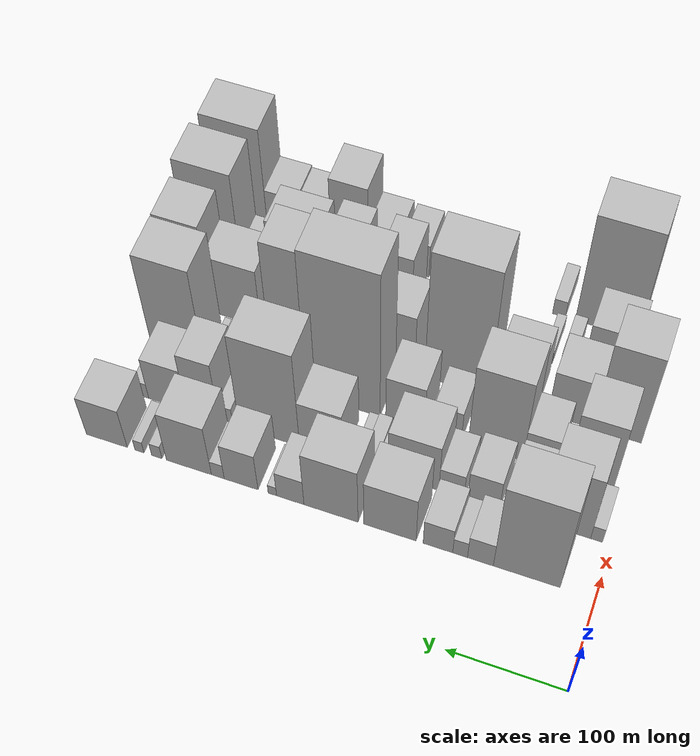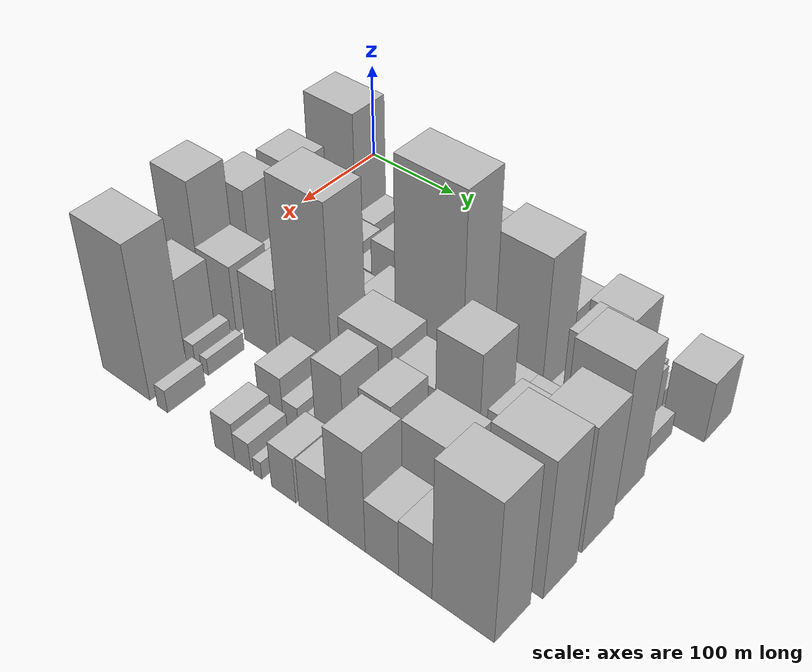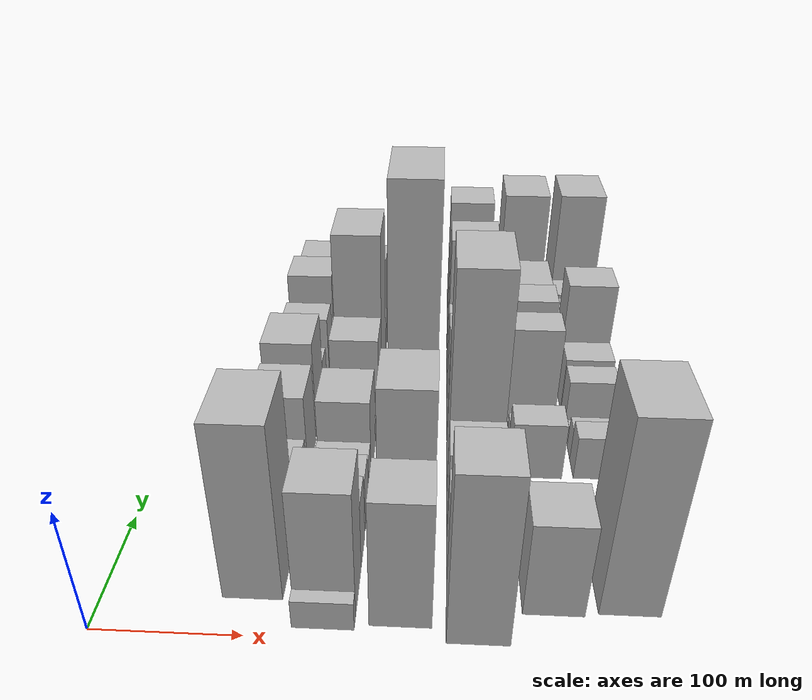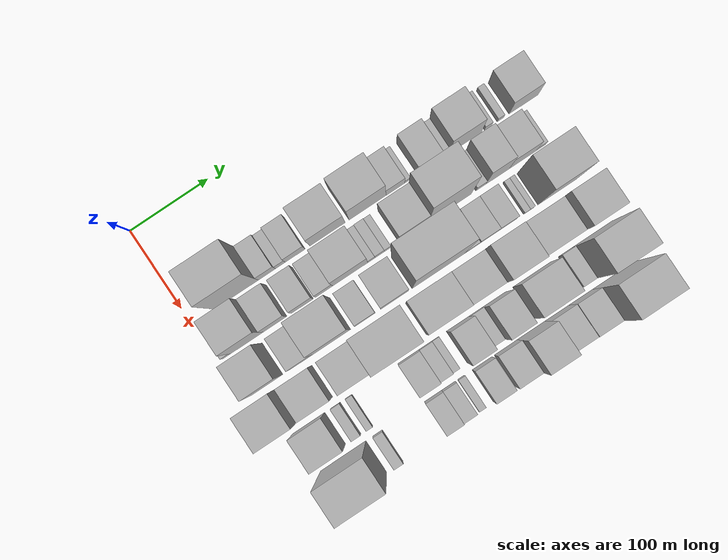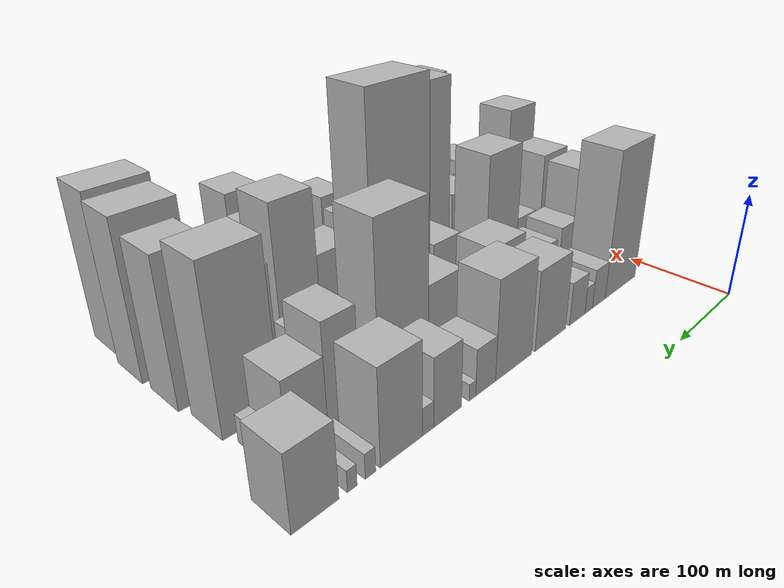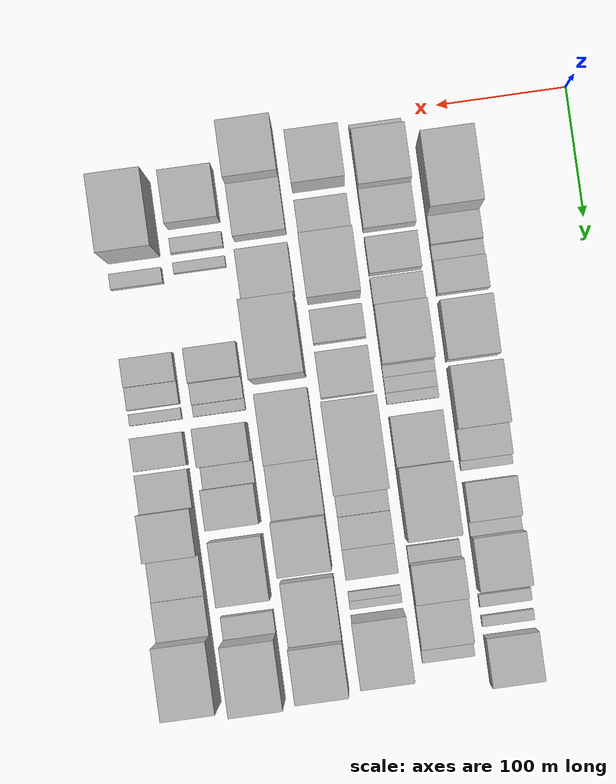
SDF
<sdf version="1.6">
 <world name="default">
  <model name="building_25">
   <static>1</static>
   <pose>100.0000 57.4775 0 0.000000 0.000000 0.000000</pose>
   <link name="link">
    <pose>0 0 72.00 0 0 0</pose>
    <collision name="collision"><geometry><box><size>40.0000 55.8075 144.0000</size></box></geometry></collision>
    <visual name="visual">
     <cast_shadows>0</cast_shadows>
     <geometry><box><size>40.0000 55.8075 144.0000</size></box></geometry>
     <material>
      <script>
       <uri>model://HANNAS_wall/materials/scripts</uri>
       <uri>model://HANNAS_wall/materials/textures</uri>
       <name>vrc/HANNAS_wall</name>
      </script>
     </material>
    </visual>
   </link>
  </model>
  <model name="building_26">
   <static>1</static>
   <pose>100.0000 96.2898 0 0.000000 0.000000 0.000000</pose>
   <link name="link">
    <pose>0 0 19.50 0 0 0</pose>
    <collision name="collision"><geometry><box><size>40.0000 21.8170 39.0000</size></box></geometry></collision>
    <visual name="visual">
     <cast_shadows>0</cast_shadows>
     <geometry><box><size>40.0000 21.8170 39.0000</size></box></geometry>
     <material>
      <script>
       <uri>model://HANNAS_wall/materials/scripts</uri>
       <uri>model://HANNAS_wall/materials/textures</uri>
       <name>vrc/HANNAS_wall</name>
      </script>
     </material>
    </visual>
   </link>
  </model>
  <model name="building_27">
   <static>1</static>
   <pose>100.0000 113.4390 0 0.000000 0.000000 0.000000</pose>
   <link name="link">
    <pose>0 0 13.50 0 0 0</pose>
    <collision name="collision"><geometry><box><size>40.0000 12.4813 27.0000</size></box></geometry></collision>
    <visual name="visual">
     <cast_shadows>0</cast_shadows>
     <geometry><box><size>40.0000 12.4813 27.0000</size></box></geometry>
     <material>
      <script>
       <uri>model://HANNAS_wall/materials/scripts</uri>
       <uri>model://HANNAS_wall/materials/textures</uri>
       <name>vrc/HANNAS_wall</name>
      </script>
     </material>
    </visual>
   </link>
  </model>
  <model name="building_28">
   <static>1</static>
   <pose>100.0000 132.2733 0 0.000000 0.000000 0.000000</pose>
   <link name="link">
    <pose>0 0 21.00 0 0 0</pose>
    <collision name="collision"><geometry><box><size>40.0000 25.1873 42.0000</size></box></geometry></collision>
    <visual name="visual">
     <cast_shadows>0</cast_shadows>
     <geometry><box><size>40.0000 25.1873 42.0000</size></box></geometry>
     <material>
      <script>
       <uri>model://HANNAS_wall/materials/scripts</uri>
       <uri>model://HANNAS_wall/materials/textures</uri>
       <name>vrc/HANNAS_wall</name>
      </script>
     </material>
    </visual>
   </link>
  </model>
  <model name="building_29">
   <static>1</static>
   <pose>100.0000 173.3552 0 0.000000 0.000000 0.000000</pose>
   <link name="link">
    <pose>0 0 37.50 0 0 0</pose>
    <collision name="collision"><geometry><box><size>40.0000 44.9764 75.0000</size></box></geometry></collision>
    <visual name="visual">
     <cast_shadows>0</cast_shadows>
     <geometry><box><size>40.0000 44.9764 75.0000</size></box></geometry>
     <material>
      <script>
       <uri>model://HANNAS_wall/materials/scripts</uri>
       <uri>model://HANNAS_wall/materials/textures</uri>
       <name>vrc/HANNAS_wall</name>
      </script>
     </material>
    </visual>
   </link>
  </model>
  <model name="building_30">
   <static>1</static>
   <pose>100.0000 224.4395 0 0.000000 0.000000 0.000000</pose>
   <link name="link">
    <pose>0 0 45.00 0 0 0</pose>
    <collision name="collision"><geometry><box><size>40.0000 47.1923 90.0000</size></box></geometry></collision>
    <visual name="visual">
     <cast_shadows>0</cast_shadows>
     <geometry><box><size>40.0000 47.1923 90.0000</size></box></geometry>
     <material>
      <script>
       <uri>model://HANNAS_wall/materials/scripts</uri>
       <uri>model://HANNAS_wall/materials/textures</uri>
       <name>vrc/HANNAS_wall</name>
      </script>
     </material>
    </visual>
   </link>
  </model>
  <model name="building_31">
   <static>1</static>
   <pose>100.0000 260.0654 0 0.000000 0.000000 0.000000</pose>
   <link name="link">
    <pose>0 0 21.00 0 0 0</pose>
    <collision name="collision"><geometry><box><size>40.0000 24.0594 42.0000</size></box></geometry></collision>
    <visual name="visual">
     <cast_shadows>0</cast_shadows>
     <geometry><box><size>40.0000 24.0594 42.0000</size></box></geometry>
     <material>
      <script>
       <uri>model://HANNAS_wall/materials/scripts</uri>
       <uri>model://HANNAS_wall/materials/textures</uri>
       <name>vrc/HANNAS_wall</name>
      </script>
     </material>
    </visual>
   </link>
  </model>
  <model name="building_32">
   <static>1</static>
   <pose>100.0000 275.8018 0 0.000000 0.000000 0.000000</pose>
   <link name="link">
    <pose>0 0 7.50 0 0 0</pose>
    <collision name="collision"><geometry><box><size>40.0000 7.4135 15.0000</size></box></geometry></collision>
    <visual name="visual">
     <cast_shadows>0</cast_shadows>
     <geometry><box><size>40.0000 7.4135 15.0000</size></box></geometry>
     <material>
      <script>
       <uri>model://HANNAS_wall/materials/scripts</uri>
       <uri>model://HANNAS_wall/materials/textures</uri>
       <name>vrc/HANNAS_wall</name>
      </script>
     </material>
    </visual>
   </link>
  </model>
  <model name="building_33">
   <static>1</static>
   <pose>100.0000 303.5232 0 0.000000 0.000000 0.000000</pose>
   <link name="link">
    <pose>0 0 30.00 0 0 0</pose>
    <collision name="collision"><geometry><box><size>40.0000 30.0294 60.0000</size></box></geometry></collision>
    <visual name="visual">
     <cast_shadows>0</cast_shadows>
     <geometry><box><size>40.0000 30.0294 60.0000</size></box></geometry>
     <material>
      <script>
       <uri>model://HANNAS_wall/materials/scripts</uri>
       <uri>model://HANNAS_wall/materials/textures</uri>
       <name>vrc/HANNAS_wall</name>
      </script>
     </material>
    </visual>
   </link>
  </model>
  <model name="building_34">
   <static>1</static>
   <pose>100.0000 324.2681 0 0.000000 0.000000 0.000000</pose>
   <link name="link">
    <pose>0 0 12.00 0 0 0</pose>
    <collision name="collision"><geometry><box><size>40.0000 11.4604 24.0000</size></box></geometry></collision>
    <visual name="visual">
     <cast_shadows>0</cast_shadows>
     <geometry><box><size>40.0000 11.4604 24.0000</size></box></geometry>
     <material>
      <script>
       <uri>model://HANNAS_wall/materials/scripts</uri>
       <uri>model://HANNAS_wall/materials/textures</uri>
       <name>vrc/HANNAS_wall</name>
      </script>
     </material>
    </visual>
   </link>
  </model>
  <model name="building_35">
   <static>1</static>
   <pose>100.0000 350.2598 0 0.000000 0.000000 0.000000</pose>
   <link name="link">
    <pose>0 0 40.50 0 0 0</pose>
    <collision name="collision"><geometry><box><size>40.0000 40.5229 81.0000</size></box></geometry></collision>
    <visual name="visual">
     <cast_shadows>0</cast_shadows>
     <geometry><box><size>40.0000 40.5229 81.0000</size></box></geometry>
     <material>
      <script>
       <uri>model://HANNAS_wall/materials/scripts</uri>
       <uri>model://HANNAS_wall/materials/textures</uri>
       <name>vrc/HANNAS_wall</name>
      </script>
     </material>
    </visual>
   </link>
  </model>
  <model name="building_36">
   <static>1</static>
   <pose>100.0000 379.2140 0 0.000000 0.000000 0.000000</pose>
   <link name="link">
    <pose>0 0 10.50 0 0 0</pose>
    <collision name="collision"><geometry><box><size>40.0000 9.3856 21.0000</size></box></geometry></collision>
    <visual name="visual">
     <cast_shadows>0</cast_shadows>
     <geometry><box><size>40.0000 9.3856 21.0000</size></box></geometry>
     <material>
      <script>
       <uri>model://HANNAS_wall/materials/scripts</uri>
       <uri>model://HANNAS_wall/materials/textures</uri>
       <name>vrc/HANNAS_wall</name>
      </script>
     </material>
    </visual>
   </link>
  </model>
  <model name="building_37">
   <static>1</static>
   <pose>100.0000 395.0045 0 0.000000 0.000000 0.000000</pose>
   <link name="link">
    <pose>0 0 9.00 0 0 0</pose>
    <collision name="collision"><geometry><box><size>40.0000 8.1955 18.0000</size></box></geometry></collision>
    <visual name="visual">
     <cast_shadows>0</cast_shadows>
     <geometry><box><size>40.0000 8.1955 18.0000</size></box></geometry>
     <material>
      <script>
       <uri>model://HANNAS_wall/materials/scripts</uri>
       <uri>model://HANNAS_wall/materials/textures</uri>
       <name>vrc/HANNAS_wall</name>
      </script>
     </material>
    </visual>
   </link>
  </model>
  <model name="building_38">
   <static>1</static>
   <pose>100.0000 424.7897 0 0.000000 0.000000 0.000000</pose>
   <link name="link">
    <pose>0 0 31.50 0 0 0</pose>
    <collision name="collision"><geometry><box><size>40.0000 37.3748 63.0000</size></box></geometry></collision>
    <visual name="visual">
     <cast_shadows>0</cast_shadows>
     <geometry><box><size>40.0000 37.3748 63.0000</size></box></geometry>
     <material>
      <script>
       <uri>model://HANNAS_wall/materials/scripts</uri>
       <uri>model://HANNAS_wall/materials/textures</uri>
       <name>vrc/HANNAS_wall</name>
      </script>
     </material>
    </visual>
   </link>
  </model>
  <model name="building_74">
   <static>1</static>
   <pose>149.0000 12.9924 0 0.000000 0.000000 0.000000</pose>
   <link name="link">
    <pose>0 0 12.00 0 0 0</pose>
    <collision name="collision"><geometry><box><size>40.0000 10.0763 24.0000</size></box></geometry></collision>
    <visual name="visual">
     <cast_shadows>0</cast_shadows>
     <geometry><box><size>40.0000 10.0763 24.0000</size></box></geometry>
     <material>
      <script>
       <uri>model://HANNAS_wall/materials/scripts</uri>
       <uri>model://HANNAS_wall/materials/textures</uri>
       <name>vrc/HANNAS_wall</name>
      </script>
     </material>
    </visual>
   </link>
  </model>
  <model name="building_75">
   <static>1</static>
   <pose>149.0000 38.6967 0 0.000000 0.000000 0.000000</pose>
   <link name="link">
    <pose>0 0 52.50 0 0 0</pose>
    <collision name="collision"><geometry><box><size>40.0000 41.3322 105.0000</size></box></geometry></collision>
    <visual name="visual">
     <cast_shadows>0</cast_shadows>
     <geometry><box><size>40.0000 41.3322 105.0000</size></box></geometry>
     <material>
      <script>
       <uri>model://HANNAS_wall/materials/scripts</uri>
       <uri>model://HANNAS_wall/materials/textures</uri>
       <name>vrc/HANNAS_wall</name>
      </script>
     </material>
    </visual>
   </link>
  </model>
  <model name="building_76">
   <static>1</static>
   <pose>149.0000 74.3088 0 0.000000 0.000000 0.000000</pose>
   <link name="link">
    <pose>0 0 28.50 0 0 0</pose>
    <collision name="collision"><geometry><box><size>40.0000 29.8921 57.0000</size></box></geometry></collision>
    <visual name="visual">
     <cast_shadows>0</cast_shadows>
     <geometry><box><size>40.0000 29.8921 57.0000</size></box></geometry>
     <material>
      <script>
       <uri>model://HANNAS_wall/materials/scripts</uri>
       <uri>model://HANNAS_wall/materials/textures</uri>
       <name>vrc/HANNAS_wall</name>
      </script>
     </material>
    </visual>
   </link>
  </model>
  <model name="building_77">
   <static>1</static>
   <pose>149.0000 109.0621 0 0.000000 0.000000 0.000000</pose>
   <link name="link">
    <pose>0 0 24.00 0 0 0</pose>
    <collision name="collision"><geometry><box><size>40.0000 27.6144 48.0000</size></box></geometry></collision>
    <visual name="visual">
     <cast_shadows>0</cast_shadows>
     <geometry><box><size>40.0000 27.6144 48.0000</size></box></geometry>
     <material>
      <script>
       <uri>model://HANNAS_wall/materials/scripts</uri>
       <uri>model://HANNAS_wall/materials/textures</uri>
       <name>vrc/HANNAS_wall</name>
      </script>
     </material>
    </visual>
   </link>
  </model>
  <model name="building_78">
   <static>1</static>
   <pose>149.0000 136.7613 0 0.000000 0.000000 0.000000</pose>
   <link name="link">
    <pose>0 0 19.50 0 0 0</pose>
    <collision name="collision"><geometry><box><size>40.0000 21.7840 39.0000</size></box></geometry></collision>
    <visual name="visual">
     <cast_shadows>0</cast_shadows>
     <geometry><box><size>40.0000 21.7840 39.0000</size></box></geometry>
     <material>
      <script>
       <uri>model://HANNAS_wall/materials/scripts</uri>
       <uri>model://HANNAS_wall/materials/textures</uri>
       <name>vrc/HANNAS_wall</name>
      </script>
     </material>
    </visual>
   </link>
  </model>
  <model name="building_79">
   <static>1</static>
   <pose>149.0000 169.9749 0 0.000000 0.000000 0.000000</pose>
   <link name="link">
    <pose>0 0 37.50 0 0 0</pose>
    <collision name="collision"><geometry><box><size>40.0000 44.6433 75.0000</size></box></geometry></collision>
    <visual name="visual">
     <cast_shadows>0</cast_shadows>
     <geometry><box><size>40.0000 44.6433 75.0000</size></box></geometry>
     <material>
      <script>
       <uri>model://HANNAS_wall/materials/scripts</uri>
       <uri>model://HANNAS_wall/materials/textures</uri>
       <name>vrc/HANNAS_wall</name>
      </script>
     </material>
    </visual>
   </link>
  </model>
  <model name="building_80">
   <static>1</static>
   <pose>149.0000 196.8601 0 0.000000 0.000000 0.000000</pose>
   <link name="link">
    <pose>0 0 10.50 0 0 0</pose>
    <collision name="collision"><geometry><box><size>40.0000 9.1271 21.0000</size></box></geometry></collision>
    <visual name="visual">
     <cast_shadows>0</cast_shadows>
     <geometry><box><size>40.0000 9.1271 21.0000</size></box></geometry>
     <material>
      <script>
       <uri>model://HANNAS_wall/materials/scripts</uri>
       <uri>model://HANNAS_wall/materials/textures</uri>
       <name>vrc/HANNAS_wall</name>
      </script>
     </material>
    </visual>
   </link>
  </model>
  <model name="building_81">
   <static>1</static>
   <pose>149.0000 207.4153 0 0.000000 0.000000 0.000000</pose>
   <link name="link">
    <pose>0 0 12.00 0 0 0</pose>
    <collision name="collision"><geometry><box><size>40.0000 11.9832 24.0000</size></box></geometry></collision>
    <visual name="visual">
     <cast_shadows>0</cast_shadows>
     <geometry><box><size>40.0000 11.9832 24.0000</size></box></geometry>
     <material>
      <script>
       <uri>model://HANNAS_wall/materials/scripts</uri>
       <uri>model://HANNAS_wall/materials/textures</uri>
       <name>vrc/HANNAS_wall</name>
      </script>
     </material>
    </visual>
   </link>
  </model>
  <model name="building_82">
   <static>1</static>
   <pose>149.0000 217.6417 0 0.000000 0.000000 0.000000</pose>
   <link name="link">
    <pose>0 0 10.50 0 0 0</pose>
    <collision name="collision"><geometry><box><size>40.0000 8.4696 21.0000</size></box></geometry></collision>
    <visual name="visual">
     <cast_shadows>0</cast_shadows>
     <geometry><box><size>40.0000 8.4696 21.0000</size></box></geometry>
     <material>
      <script>
       <uri>model://HANNAS_wall/materials/scripts</uri>
       <uri>model://HANNAS_wall/materials/textures</uri>
       <name>vrc/HANNAS_wall</name>
      </script>
     </material>
    </visual>
   </link>
  </model>
  <model name="building_83">
   <static>1</static>
   <pose>149.0000 251.1488 0 0.000000 0.000000 0.000000</pose>
   <link name="link">
    <pose>0 0 37.50 0 0 0</pose>
    <collision name="collision"><geometry><box><size>40.0000 38.5445 75.0000</size></box></geometry></collision>
    <visual name="visual">
     <cast_shadows>0</cast_shadows>
     <geometry><box><size>40.0000 38.5445 75.0000</size></box></geometry>
     <material>
      <script>
       <uri>model://HANNAS_wall/materials/scripts</uri>
       <uri>model://HANNAS_wall/materials/textures</uri>
       <name>vrc/HANNAS_wall</name>
      </script>
     </material>
    </visual>
   </link>
  </model>
  <model name="building_84">
   <static>1</static>
   <pose>149.0000 297.4996 0 0.000000 0.000000 0.000000</pose>
   <link name="link">
    <pose>0 0 75.00 0 0 0</pose>
    <collision name="collision"><geometry><box><size>40.0000 54.1572 150.0000</size></box></geometry></collision>
    <visual name="visual">
     <cast_shadows>0</cast_shadows>
     <geometry><box><size>40.0000 54.1572 150.0000</size></box></geometry>
     <material>
      <script>
       <uri>model://HANNAS_wall/materials/scripts</uri>
       <uri>model://HANNAS_wall/materials/textures</uri>
       <name>vrc/HANNAS_wall</name>
      </script>
     </material>
    </visual>
   </link>
  </model>
  <model name="building_85">
   <static>1</static>
   <pose>149.0000 336.9447 0 0.000000 0.000000 0.000000</pose>
   <link name="link">
    <pose>0 0 13.50 0 0 0</pose>
    <collision name="collision"><geometry><box><size>40.0000 12.7330 27.0000</size></box></geometry></collision>
    <visual name="visual">
     <cast_shadows>0</cast_shadows>
     <geometry><box><size>40.0000 12.7330 27.0000</size></box></geometry>
     <material>
      <script>
       <uri>model://HANNAS_wall/materials/scripts</uri>
       <uri>model://HANNAS_wall/materials/textures</uri>
       <name>vrc/HANNAS_wall</name>
      </script>
     </material>
    </visual>
   </link>
  </model>
  <model name="building_86">
   <static>1</static>
   <pose>149.0000 358.2089 0 0.000000 0.000000 0.000000</pose>
   <link name="link">
    <pose>0 0 46.50 0 0 0</pose>
    <collision name="collision"><geometry><box><size>40.0000 29.7954 93.0000</size></box></geometry></collision>
    <visual name="visual">
     <cast_shadows>0</cast_shadows>
     <geometry><box><size>40.0000 29.7954 93.0000</size></box></geometry>
     <material>
      <script>
       <uri>model://HANNAS_wall/materials/scripts</uri>
       <uri>model://HANNAS_wall/materials/textures</uri>
       <name>vrc/HANNAS_wall</name>
      </script>
     </material>
    </visual>
   </link>
  </model>
  <model name="building_87">
   <static>1</static>
   <pose>149.0000 390.4967 0 0.000000 0.000000 0.000000</pose>
   <link name="link">
    <pose>0 0 33.00 0 0 0</pose>
    <collision name="collision"><geometry><box><size>40.0000 34.7802 66.0000</size></box></geometry></collision>
    <visual name="visual">
     <cast_shadows>0</cast_shadows>
     <geometry><box><size>40.0000 34.7802 66.0000</size></box></geometry>
     <material>
      <script>
       <uri>model://HANNAS_wall/materials/scripts</uri>
       <uri>model://HANNAS_wall/materials/textures</uri>
       <name>vrc/HANNAS_wall</name>
      </script>
     </material>
    </visual>
   </link>
  </model>
  <model name="building_88">
   <static>1</static>
   <pose>149.0000 413.8597 0 0.000000 0.000000 0.000000</pose>
   <link name="link">
    <pose>0 0 12.00 0 0 0</pose>
    <collision name="collision"><geometry><box><size>40.0000 11.9458 24.0000</size></box></geometry></collision>
    <visual name="visual">
     <cast_shadows>0</cast_shadows>
     <geometry><box><size>40.0000 11.9458 24.0000</size></box></geometry>
     <material>
      <script>
       <uri>model://HANNAS_wall/materials/scripts</uri>
       <uri>model://HANNAS_wall/materials/textures</uri>
       <name>vrc/HANNAS_wall</name>
      </script>
     </material>
    </visual>
   </link>
  </model>
  <model name="building_127">
   <static>1</static>
   <pose>198.0000 31.8800 0 0.000000 0.000000 0.000000</pose>
   <link name="link">
    <pose>0 0 52.50 0 0 0</pose>
    <collision name="collision"><geometry><box><size>40.0000 39.5716 105.0000</size></box></geometry></collision>
    <visual name="visual">
     <cast_shadows>0</cast_shadows>
     <geometry><box><size>40.0000 39.5716 105.0000</size></box></geometry>
     <material>
      <script>
       <uri>model://HANNAS_wall/materials/scripts</uri>
       <uri>model://HANNAS_wall/materials/textures</uri>
       <name>vrc/HANNAS_wall</name>
      </script>
     </material>
    </visual>
   </link>
  </model>
  <model name="building_128">
   <static>1</static>
   <pose>198.0000 75.3920 0 0.000000 0.000000 0.000000</pose>
   <link name="link">
    <pose>0 0 25.50 0 0 0</pose>
    <collision name="collision"><geometry><box><size>40.0000 29.4524 51.0000</size></box></geometry></collision>
    <visual name="visual">
     <cast_shadows>0</cast_shadows>
     <geometry><box><size>40.0000 29.4524 51.0000</size></box></geometry>
     <material>
      <script>
       <uri>model://HANNAS_wall/materials/scripts</uri>
       <uri>model://HANNAS_wall/materials/textures</uri>
       <name>vrc/HANNAS_wall</name>
      </script>
     </material>
    </visual>
   </link>
  </model>
  <model name="building_129">
   <static>1</static>
   <pose>198.0000 114.0649 0 0.000000 0.000000 0.000000</pose>
   <link name="link">
    <pose>0 0 64.50 0 0 0</pose>
    <collision name="collision"><geometry><box><size>40.0000 47.8933 129.0000</size></box></geometry></collision>
    <visual name="visual">
     <cast_shadows>0</cast_shadows>
     <geometry><box><size>40.0000 47.8933 129.0000</size></box></geometry>
     <material>
      <script>
       <uri>model://HANNAS_wall/materials/scripts</uri>
       <uri>model://HANNAS_wall/materials/textures</uri>
       <name>vrc/HANNAS_wall</name>
      </script>
     </material>
    </visual>
   </link>
  </model>
  <model name="building_130">
   <static>1</static>
   <pose>198.0000 156.7406 0 0.000000 0.000000 0.000000</pose>
   <link name="link">
    <pose>0 0 24.00 0 0 0</pose>
    <collision name="collision"><geometry><box><size>40.0000 25.4582 48.0000</size></box></geometry></collision>
    <visual name="visual">
     <cast_shadows>0</cast_shadows>
     <geometry><box><size>40.0000 25.4582 48.0000</size></box></geometry>
     <material>
      <script>
       <uri>model://HANNAS_wall/materials/scripts</uri>
       <uri>model://HANNAS_wall/materials/textures</uri>
       <name>vrc/HANNAS_wall</name>
      </script>
     </material>
    </visual>
   </link>
  </model>
  <model name="building_131">
   <static>1</static>
   <pose>198.0000 193.8205 0 0.000000 0.000000 0.000000</pose>
   <link name="link">
    <pose>0 0 34.50 0 0 0</pose>
    <collision name="collision"><geometry><box><size>40.0000 34.7016 69.0000</size></box></geometry></collision>
    <visual name="visual">
     <cast_shadows>0</cast_shadows>
     <geometry><box><size>40.0000 34.7016 69.0000</size></box></geometry>
     <material>
      <script>
       <uri>model://HANNAS_wall/materials/scripts</uri>
       <uri>model://HANNAS_wall/materials/textures</uri>
       <name>vrc/HANNAS_wall</name>
      </script>
     </material>
    </visual>
   </link>
  </model>
  <model name="building_132">
   <static>1</static>
   <pose>198.0000 249.6970 0 0.000000 0.000000 0.000000</pose>
   <link name="link">
    <pose>0 0 109.50 0 0 0</pose>
    <collision name="collision"><geometry><box><size>40.0000 67.0515 219.0000</size></box></geometry></collision>
    <visual name="visual">
     <cast_shadows>0</cast_shadows>
     <geometry><box><size>40.0000 67.0515 219.0000</size></box></geometry>
     <material>
      <script>
       <uri>model://HANNAS_wall/materials/scripts</uri>
       <uri>model://HANNAS_wall/materials/textures</uri>
       <name>vrc/HANNAS_wall</name>
      </script>
     </material>
    </visual>
   </link>
  </model>
  <model name="building_133">
   <static>1</static>
   <pose>198.0000 292.3277 0 0.000000 0.000000 0.000000</pose>
   <link name="link">
    <pose>0 0 16.50 0 0 0</pose>
    <collision name="collision"><geometry><box><size>40.0000 18.2098 33.0000</size></box></geometry></collision>
    <visual name="visual">
     <cast_shadows>0</cast_shadows>
     <geometry><box><size>40.0000 18.2098 33.0000</size></box></geometry>
     <material>
      <script>
       <uri>model://HANNAS_wall/materials/scripts</uri>
       <uri>model://HANNAS_wall/materials/textures</uri>
       <name>vrc/HANNAS_wall</name>
      </script>
     </material>
    </visual>
   </link>
  </model>
  <model name="building_134">
   <static>1</static>
   <pose>198.0000 313.8214 0 0.000000 0.000000 0.000000</pose>
   <link name="link">
    <pose>0 0 21.00 0 0 0</pose>
    <collision name="collision"><geometry><box><size>40.0000 24.7776 42.0000</size></box></geometry></collision>
    <visual name="visual">
     <cast_shadows>0</cast_shadows>
     <geometry><box><size>40.0000 24.7776 42.0000</size></box></geometry>
     <material>
      <script>
       <uri>model://HANNAS_wall/materials/scripts</uri>
       <uri>model://HANNAS_wall/materials/textures</uri>
       <name>vrc/HANNAS_wall</name>
      </script>
     </material>
    </visual>
   </link>
  </model>
  <model name="building_135">
   <static>1</static>
   <pose>198.0000 337.6756 0 0.000000 0.000000 0.000000</pose>
   <link name="link">
    <pose>0 0 21.00 0 0 0</pose>
    <collision name="collision"><geometry><box><size>40.0000 22.9309 42.0000</size></box></geometry></collision>
    <visual name="visual">
     <cast_shadows>0</cast_shadows>
     <geometry><box><size>40.0000 22.9309 42.0000</size></box></geometry>
     <material>
      <script>
       <uri>model://HANNAS_wall/materials/scripts</uri>
       <uri>model://HANNAS_wall/materials/textures</uri>
       <name>vrc/HANNAS_wall</name>
      </script>
     </material>
    </visual>
   </link>
  </model>
  <model name="building_136">
   <static>1</static>
   <pose>198.0000 362.7642 0 0.000000 0.000000 0.000000</pose>
   <link name="link">
    <pose>0 0 7.50 0 0 0</pose>
    <collision name="collision"><geometry><box><size>40.0000 7.2463 15.0000</size></box></geometry></collision>
    <visual name="visual">
     <cast_shadows>0</cast_shadows>
     <geometry><box><size>40.0000 7.2463 15.0000</size></box></geometry>
     <material>
      <script>
       <uri>model://HANNAS_wall/materials/scripts</uri>
       <uri>model://HANNAS_wall/materials/textures</uri>
       <name>vrc/HANNAS_wall</name>
      </script>
     </material>
    </visual>
   </link>
  </model>
  <model name="building_137">
   <static>1</static>
   <pose>198.0000 369.4454 0 0.000000 0.000000 0.000000</pose>
   <link name="link">
    <pose>0 0 7.50 0 0 0</pose>
    <collision name="collision"><geometry><box><size>40.0000 6.1161 15.0000</size></box></geometry></collision>
    <visual name="visual">
     <cast_shadows>0</cast_shadows>
     <geometry><box><size>40.0000 6.1161 15.0000</size></box></geometry>
     <material>
      <script>
       <uri>model://HANNAS_wall/materials/scripts</uri>
       <uri>model://HANNAS_wall/materials/textures</uri>
       <name>vrc/HANNAS_wall</name>
      </script>
     </material>
    </visual>
   </link>
  </model>
  <model name="building_138">
   <static>1</static>
   <pose>198.0000 401.9800 0 0.000000 0.000000 0.000000</pose>
   <link name="link">
    <pose>0 0 70.50 0 0 0</pose>
    <collision name="collision"><geometry><box><size>40.0000 48.9530 141.0000</size></box></geometry></collision>
    <visual name="visual">
     <cast_shadows>0</cast_shadows>
     <geometry><box><size>40.0000 48.9530 141.0000</size></box></geometry>
     <material>
      <script>
       <uri>model://HANNAS_wall/materials/scripts</uri>
       <uri>model://HANNAS_wall/materials/textures</uri>
       <name>vrc/HANNAS_wall</name>
      </script>
     </material>
    </visual>
   </link>
  </model>
  <model name="building_174">
   <static>1</static>
   <pose>247.0000 22.1049 0 0.000000 0.000000 0.000000</pose>
   <link name="link">
    <pose>0 0 69.00 0 0 0</pose>
    <collision name="collision"><geometry><box><size>40.0000 41.7890 138.0000</size></box></geometry></collision>
    <visual name="visual">
     <cast_shadows>0</cast_shadows>
     <geometry><box><size>40.0000 41.7890 138.0000</size></box></geometry>
     <material>
      <script>
       <uri>model://HANNAS_wall/materials/scripts</uri>
       <uri>model://HANNAS_wall/materials/textures</uri>
       <name>vrc/HANNAS_wall</name>
      </script>
     </material>
    </visual>
   </link>
  </model>
  <model name="building_175">
   <static>1</static>
   <pose>247.0000 62.7979 0 0.000000 0.000000 0.000000</pose>
   <link name="link">
    <pose>0 0 36.00 0 0 0</pose>
    <collision name="collision"><geometry><box><size>40.0000 39.5972 72.0000</size></box></geometry></collision>
    <visual name="visual">
     <cast_shadows>0</cast_shadows>
     <geometry><box><size>40.0000 39.5972 72.0000</size></box></geometry>
     <material>
      <script>
       <uri>model://HANNAS_wall/materials/scripts</uri>
       <uri>model://HANNAS_wall/materials/textures</uri>
       <name>vrc/HANNAS_wall</name>
      </script>
     </material>
    </visual>
   </link>
  </model>
  <model name="building_176">
   <static>1</static>
   <pose>247.0000 111.8949 0 0.000000 0.000000 0.000000</pose>
   <link name="link">
    <pose>0 0 37.50 0 0 0</pose>
    <collision name="collision"><geometry><box><size>40.0000 38.5968 75.0000</size></box></geometry></collision>
    <visual name="visual">
     <cast_shadows>0</cast_shadows>
     <geometry><box><size>40.0000 38.5968 75.0000</size></box></geometry>
     <material>
      <script>
       <uri>model://HANNAS_wall/materials/scripts</uri>
       <uri>model://HANNAS_wall/materials/textures</uri>
       <name>vrc/HANNAS_wall</name>
      </script>
     </material>
    </visual>
   </link>
  </model>
  <model name="building_177">
   <static>1</static>
   <pose>247.0000 164.0244 0 0.000000 0.000000 0.000000</pose>
   <link name="link">
    <pose>0 0 96.00 0 0 0</pose>
    <collision name="collision"><geometry><box><size>40.0000 57.6622 192.0000</size></box></geometry></collision>
    <visual name="visual">
     <cast_shadows>0</cast_shadows>
     <geometry><box><size>40.0000 57.6622 192.0000</size></box></geometry>
     <material>
      <script>
       <uri>model://HANNAS_wall/materials/scripts</uri>
       <uri>model://HANNAS_wall/materials/textures</uri>
       <name>vrc/HANNAS_wall</name>
      </script>
     </material>
    </visual>
   </link>
  </model>
  <model name="building_178">
   <static>1</static>
   <pose>247.0000 228.6428 0 0.000000 0.000000 0.000000</pose>
   <link name="link">
    <pose>0 0 45.00 0 0 0</pose>
    <collision name="collision"><geometry><box><size>40.0000 53.5746 90.0000</size></box></geometry></collision>
    <visual name="visual">
     <cast_shadows>0</cast_shadows>
     <geometry><box><size>40.0000 53.5746 90.0000</size></box></geometry>
     <material>
      <script>
       <uri>model://HANNAS_wall/materials/scripts</uri>
       <uri>model://HANNAS_wall/materials/textures</uri>
       <name>vrc/HANNAS_wall</name>
      </script>
     </material>
    </visual>
   </link>
  </model>
  <model name="building_179">
   <static>1</static>
   <pose>247.0000 276.2238 0 0.000000 0.000000 0.000000</pose>
   <link name="link">
    <pose>0 0 37.50 0 0 0</pose>
    <collision name="collision"><geometry><box><size>40.0000 41.5874 75.0000</size></box></geometry></collision>
    <visual name="visual">
     <cast_shadows>0</cast_shadows>
     <geometry><box><size>40.0000 41.5874 75.0000</size></box></geometry>
     <material>
      <script>
       <uri>model://HANNAS_wall/materials/scripts</uri>
       <uri>model://HANNAS_wall/materials/textures</uri>
       <name>vrc/HANNAS_wall</name>
      </script>
     </material>
    </visual>
   </link>
  </model>
  <model name="building_180">
   <static>1</static>
   <pose>247.0000 317.3624 0 0.000000 0.000000 0.000000</pose>
   <link name="link">
    <pose>0 0 67.50 0 0 0</pose>
    <collision name="collision"><geometry><box><size>40.0000 40.6897 135.0000</size></box></geometry></collision>
    <visual name="visual">
     <cast_shadows>0</cast_shadows>
     <geometry><box><size>40.0000 40.6897 135.0000</size></box></geometry>
     <material>
      <script>
       <uri>model://HANNAS_wall/materials/scripts</uri>
       <uri>model://HANNAS_wall/materials/textures</uri>
       <name>vrc/HANNAS_wall</name>
      </script>
     </material>
    </visual>
   </link>
  </model>
  <model name="building_181">
   <static>1</static>
   <pose>247.0000 367.4041 0 0.000000 0.000000 0.000000</pose>
   <link name="link">
    <pose>0 0 43.50 0 0 0</pose>
    <collision name="collision"><geometry><box><size>40.0000 47.3938 87.0000</size></box></geometry></collision>
    <visual name="visual">
     <cast_shadows>0</cast_shadows>
     <geometry><box><size>40.0000 47.3938 87.0000</size></box></geometry>
     <material>
      <script>
       <uri>model://HANNAS_wall/materials/scripts</uri>
       <uri>model://HANNAS_wall/materials/textures</uri>
       <name>vrc/HANNAS_wall</name>
      </script>
     </material>
    </visual>
   </link>
  </model>
  <model name="building_182">
   <static>1</static>
   <pose>247.0000 411.3356 0 0.000000 0.000000 0.000000</pose>
   <link name="link">
    <pose>0 0 64.50 0 0 0</pose>
    <collision name="collision"><geometry><box><size>40.0000 40.4693 129.0000</size></box></geometry></collision>
    <visual name="visual">
     <cast_shadows>0</cast_shadows>
     <geometry><box><size>40.0000 40.4693 129.0000</size></box></geometry>
     <material>
      <script>
       <uri>model://HANNAS_wall/materials/scripts</uri>
       <uri>model://HANNAS_wall/materials/textures</uri>
       <name>vrc/HANNAS_wall</name>
      </script>
     </material>
    </visual>
   </link>
  </model>
  <model name="building_218">
   <static>1</static>
   <pose>296.0000 46.4369 0 0.000000 0.000000 0.000000</pose>
   <link name="link">
    <pose>0 0 39.00 0 0 0</pose>
    <collision name="collision"><geometry><box><size>40.0000 40.1424 78.0000</size></box></geometry></collision>
    <visual name="visual">
     <cast_shadows>0</cast_shadows>
     <geometry><box><size>40.0000 40.1424 78.0000</size></box></geometry>
     <material>
      <script>
       <uri>model://HANNAS_wall/materials/scripts</uri>
       <uri>model://HANNAS_wall/materials/textures</uri>
       <name>vrc/HANNAS_wall</name>
      </script>
     </material>
    </visual>
   </link>
  </model>
  <model name="building_219">
   <static>1</static>
   <pose>296.0000 80.2509 0 0.000000 0.000000 0.000000</pose>
   <link name="link">
    <pose>0 0 12.00 0 0 0</pose>
    <collision name="collision"><geometry><box><size>40.0000 11.4857 24.0000</size></box></geometry></collision>
    <visual name="visual">
     <cast_shadows>0</cast_shadows>
     <geometry><box><size>40.0000 11.4857 24.0000</size></box></geometry>
     <material>
      <script>
       <uri>model://HANNAS_wall/materials/scripts</uri>
       <uri>model://HANNAS_wall/materials/textures</uri>
       <name>vrc/HANNAS_wall</name>
      </script>
     </material>
    </visual>
   </link>
  </model>
  <model name="building_220">
   <static>1</static>
   <pose>296.0000 97.0913 0 0.000000 0.000000 0.000000</pose>
   <link name="link">
    <pose>0 0 9.00 0 0 0</pose>
    <collision name="collision"><geometry><box><size>40.0000 8.1951 18.0000</size></box></geometry></collision>
    <visual name="visual">
     <cast_shadows>0</cast_shadows>
     <geometry><box><size>40.0000 8.1951 18.0000</size></box></geometry>
     <material>
      <script>
       <uri>model://HANNAS_wall/materials/scripts</uri>
       <uri>model://HANNAS_wall/materials/textures</uri>
       <name>vrc/HANNAS_wall</name>
      </script>
     </material>
    </visual>
   </link>
  </model>
  <model name="building_221">
   <static>1</static>
   <pose>296.0000 172.7660 0 0.000000 0.000000 0.000000</pose>
   <link name="link">
    <pose>0 0 25.50 0 0 0</pose>
    <collision name="collision"><geometry><box><size>40.0000 26.3847 51.0000</size></box></geometry></collision>
    <visual name="visual">
     <cast_shadows>0</cast_shadows>
     <geometry><box><size>40.0000 26.3847 51.0000</size></box></geometry>
     <material>
      <script>
       <uri>model://HANNAS_wall/materials/scripts</uri>
       <uri>model://HANNAS_wall/materials/textures</uri>
       <name>vrc/HANNAS_wall</name>
      </script>
     </material>
    </visual>
   </link>
  </model>
  <model name="building_222">
   <static>1</static>
   <pose>296.0000 194.1765 0 0.000000 0.000000 0.000000</pose>
   <link name="link">
    <pose>0 0 15.00 0 0 0</pose>
    <collision name="collision"><geometry><box><size>40.0000 16.4364 30.0000</size></box></geometry></collision>
    <visual name="visual">
     <cast_shadows>0</cast_shadows>
     <geometry><box><size>40.0000 16.4364 30.0000</size></box></geometry>
     <material>
      <script>
       <uri>model://HANNAS_wall/materials/scripts</uri>
       <uri>model://HANNAS_wall/materials/textures</uri>
       <name>vrc/HANNAS_wall</name>
      </script>
     </material>
    </visual>
   </link>
  </model>
  <model name="building_223">
   <static>1</static>
   <pose>296.0000 206.8197 0 0.000000 0.000000 0.000000</pose>
   <link name="link">
    <pose>0 0 9.00 0 0 0</pose>
    <collision name="collision"><geometry><box><size>40.0000 8.8501 18.0000</size></box></geometry></collision>
    <visual name="visual">
     <cast_shadows>0</cast_shadows>
     <geometry><box><size>40.0000 8.8501 18.0000</size></box></geometry>
     <material>
      <script>
       <uri>model://HANNAS_wall/materials/scripts</uri>
       <uri>model://HANNAS_wall/materials/textures</uri>
       <name>vrc/HANNAS_wall</name>
      </script>
     </material>
    </visual>
   </link>
  </model>
  <model name="building_224">
   <static>1</static>
   <pose>296.0000 235.6812 0 0.000000 0.000000 0.000000</pose>
   <link name="link">
    <pose>0 0 48.00 0 0 0</pose>
    <collision name="collision"><geometry><box><size>40.0000 28.8729 96.0000</size></box></geometry></collision>
    <visual name="visual">
     <cast_shadows>0</cast_shadows>
     <geometry><box><size>40.0000 28.8729 96.0000</size></box></geometry>
     <material>
      <script>
       <uri>model://HANNAS_wall/materials/scripts</uri>
       <uri>model://HANNAS_wall/materials/textures</uri>
       <name>vrc/HANNAS_wall</name>
      </script>
     </material>
    </visual>
   </link>
  </model>
  <model name="building_225">
   <static>1</static>
   <pose>296.0000 258.5345 0 0.000000 0.000000 0.000000</pose>
   <link name="link">
    <pose>0 0 15.00 0 0 0</pose>
    <collision name="collision"><geometry><box><size>40.0000 16.8337 30.0000</size></box></geometry></collision>
    <visual name="visual">
     <cast_shadows>0</cast_shadows>
     <geometry><box><size>40.0000 16.8337 30.0000</size></box></geometry>
     <material>
      <script>
       <uri>model://HANNAS_wall/materials/scripts</uri>
       <uri>model://HANNAS_wall/materials/textures</uri>
       <name>vrc/HANNAS_wall</name>
      </script>
     </material>
    </visual>
   </link>
  </model>
  <model name="building_226">
   <static>1</static>
   <pose>296.0000 282.0739 0 0.000000 0.000000 0.000000</pose>
   <link name="link">
    <pose>0 0 48.00 0 0 0</pose>
    <collision name="collision"><geometry><box><size>40.0000 30.2451 96.0000</size></box></geometry></collision>
    <visual name="visual">
     <cast_shadows>0</cast_shadows>
     <geometry><box><size>40.0000 30.2451 96.0000</size></box></geometry>
     <material>
      <script>
       <uri>model://HANNAS_wall/materials/scripts</uri>
       <uri>model://HANNAS_wall/materials/textures</uri>
       <name>vrc/HANNAS_wall</name>
      </script>
     </material>
    </visual>
   </link>
  </model>
  <model name="building_227">
   <static>1</static>
   <pose>296.0000 330.3650 0 0.000000 0.000000 0.000000</pose>
   <link name="link">
    <pose>0 0 45.00 0 0 0</pose>
    <collision name="collision"><geometry><box><size>40.0000 48.3370 90.0000</size></box></geometry></collision>
    <visual name="visual">
     <cast_shadows>0</cast_shadows>
     <geometry><box><size>40.0000 48.3370 90.0000</size></box></geometry>
     <material>
      <script>
       <uri>model://HANNAS_wall/materials/scripts</uri>
       <uri>model://HANNAS_wall/materials/textures</uri>
       <name>vrc/HANNAS_wall</name>
      </script>
     </material>
    </visual>
   </link>
  </model>
  <model name="building_228">
   <static>1</static>
   <pose>296.0000 373.0693 0 0.000000 0.000000 0.000000</pose>
   <link name="link">
    <pose>0 0 16.50 0 0 0</pose>
    <collision name="collision"><geometry><box><size>40.0000 17.0716 33.0000</size></box></geometry></collision>
    <visual name="visual">
     <cast_shadows>0</cast_shadows>
     <geometry><box><size>40.0000 17.0716 33.0000</size></box></geometry>
     <material>
      <script>
       <uri>model://HANNAS_wall/materials/scripts</uri>
       <uri>model://HANNAS_wall/materials/textures</uri>
       <name>vrc/HANNAS_wall</name>
      </script>
     </material>
    </visual>
   </link>
  </model>
  <model name="building_229">
   <static>1</static>
   <pose>296.0000 407.5333 0 0.000000 0.000000 0.000000</pose>
   <link name="link">
    <pose>0 0 70.50 0 0 0</pose>
    <collision name="collision"><geometry><box><size>40.0000 51.8564 141.0000</size></box></geometry></collision>
    <visual name="visual">
     <cast_shadows>0</cast_shadows>
     <geometry><box><size>40.0000 51.8564 141.0000</size></box></geometry>
     <material>
      <script>
       <uri>model://HANNAS_wall/materials/scripts</uri>
       <uri>model://HANNAS_wall/materials/textures</uri>
       <name>vrc/HANNAS_wall</name>
      </script>
     </material>
    </visual>
   </link>
  </model>
  <model name="building_271">
   <static>1</static>
   <pose>345.0000 57.6273 0 0.000000 0.000000 0.000000</pose>
   <link name="link">
    <pose>0 0 79.50 0 0 0</pose>
    <collision name="collision"><geometry><box><size>40.0000 57.2938 159.0000</size></box></geometry></collision>
    <visual name="visual">
     <cast_shadows>0</cast_shadows>
     <geometry><box><size>40.0000 57.2938 159.0000</size></box></geometry>
     <material>
      <script>
       <uri>model://HANNAS_wall/materials/scripts</uri>
       <uri>model://HANNAS_wall/materials/textures</uri>
       <name>vrc/HANNAS_wall</name>
      </script>
     </material>
    </visual>
   </link>
  </model>
  <model name="building_272">
   <static>1</static>
   <pose>345.0000 101.1839 0 0.000000 0.000000 0.000000</pose>
   <link name="link">
    <pose>0 0 12.00 0 0 0</pose>
    <collision name="collision"><geometry><box><size>40.0000 11.8193 24.0000</size></box></geometry></collision>
    <visual name="visual">
     <cast_shadows>0</cast_shadows>
     <geometry><box><size>40.0000 11.8193 24.0000</size></box></geometry>
     <material>
      <script>
       <uri>model://HANNAS_wall/materials/scripts</uri>
       <uri>model://HANNAS_wall/materials/textures</uri>
       <name>vrc/HANNAS_wall</name>
      </script>
     </material>
    </visual>
   </link>
  </model>
  <model name="building_273">
   <static>1</static>
   <pose>345.0000 171.7176 0 0.000000 0.000000 0.000000</pose>
   <link name="link">
    <pose>0 0 19.50 0 0 0</pose>
    <collision name="collision"><geometry><box><size>40.0000 21.7494 39.0000</size></box></geometry></collision>
    <visual name="visual">
     <cast_shadows>0</cast_shadows>
     <geometry><box><size>40.0000 21.7494 39.0000</size></box></geometry>
     <material>
      <script>
       <uri>model://HANNAS_wall/materials/scripts</uri>
       <uri>model://HANNAS_wall/materials/textures</uri>
       <name>vrc/HANNAS_wall</name>
      </script>
     </material>
    </visual>
   </link>
  </model>
  <model name="building_274">
   <static>1</static>
   <pose>345.0000 191.2010 0 0.000000 0.000000 0.000000</pose>
   <link name="link">
    <pose>0 0 15.00 0 0 0</pose>
    <collision name="collision"><geometry><box><size>40.0000 17.2174 30.0000</size></box></geometry></collision>
    <visual name="visual">
     <cast_shadows>0</cast_shadows>
     <geometry><box><size>40.0000 17.2174 30.0000</size></box></geometry>
     <material>
      <script>
       <uri>model://HANNAS_wall/materials/scripts</uri>
       <uri>model://HANNAS_wall/materials/textures</uri>
       <name>vrc/HANNAS_wall</name>
      </script>
     </material>
    </visual>
   </link>
  </model>
  <model name="building_275">
   <static>1</static>
   <pose>345.0000 207.1558 0 0.000000 0.000000 0.000000</pose>
   <link name="link">
    <pose>0 0 9.00 0 0 0</pose>
    <collision name="collision"><geometry><box><size>40.0000 8.6920 18.0000</size></box></geometry></collision>
    <visual name="visual">
     <cast_shadows>0</cast_shadows>
     <geometry><box><size>40.0000 8.6920 18.0000</size></box></geometry>
     <material>
      <script>
       <uri>model://HANNAS_wall/materials/scripts</uri>
       <uri>model://HANNAS_wall/materials/textures</uri>
       <name>vrc/HANNAS_wall</name>
      </script>
     </material>
    </visual>
   </link>
  </model>
  <model name="building_276">
   <static>1</static>
   <pose>345.0000 234.0523 0 0.000000 0.000000 0.000000</pose>
   <link name="link">
    <pose>0 0 24.00 0 0 0</pose>
    <collision name="collision"><geometry><box><size>40.0000 25.1010 48.0000</size></box></geometry></collision>
    <visual name="visual">
     <cast_shadows>0</cast_shadows>
     <geometry><box><size>40.0000 25.1010 48.0000</size></box></geometry>
     <material>
      <script>
       <uri>model://HANNAS_wall/materials/scripts</uri>
       <uri>model://HANNAS_wall/materials/textures</uri>
       <name>vrc/HANNAS_wall</name>
      </script>
     </material>
    </visual>
   </link>
  </model>
  <model name="building_277">
   <static>1</static>
   <pose>345.0000 264.3085 0 0.000000 0.000000 0.000000</pose>
   <link name="link">
    <pose>0 0 25.50 0 0 0</pose>
    <collision name="collision"><geometry><box><size>40.0000 29.4115 51.0000</size></box></geometry></collision>
    <visual name="visual">
     <cast_shadows>0</cast_shadows>
     <geometry><box><size>40.0000 29.4115 51.0000</size></box></geometry>
     <material>
      <script>
       <uri>model://HANNAS_wall/materials/scripts</uri>
       <uri>model://HANNAS_wall/materials/textures</uri>
       <name>vrc/HANNAS_wall</name>
      </script>
     </material>
    </visual>
   </link>
  </model>
  <model name="building_278">
   <static>1</static>
   <pose>345.0000 296.7554 0 0.000000 0.000000 0.000000</pose>
   <link name="link">
    <pose>0 0 52.50 0 0 0</pose>
    <collision name="collision"><geometry><box><size>40.0000 35.4822 105.0000</size></box></geometry></collision>
    <visual name="visual">
     <cast_shadows>0</cast_shadows>
     <geometry><box><size>40.0000 35.4822 105.0000</size></box></geometry>
     <material>
      <script>
       <uri>model://HANNAS_wall/materials/scripts</uri>
       <uri>model://HANNAS_wall/materials/textures</uri>
       <name>vrc/HANNAS_wall</name>
      </script>
     </material>
    </visual>
   </link>
  </model>
  <model name="building_279">
   <static>1</static>
   <pose>345.0000 329.9826 0 0.000000 0.000000 0.000000</pose>
   <link name="link">
    <pose>0 0 28.50 0 0 0</pose>
    <collision name="collision"><geometry><box><size>40.0000 30.9722 57.0000</size></box></geometry></collision>
    <visual name="visual">
     <cast_shadows>0</cast_shadows>
     <geometry><box><size>40.0000 30.9722 57.0000</size></box></geometry>
     <material>
      <script>
       <uri>model://HANNAS_wall/materials/scripts</uri>
       <uri>model://HANNAS_wall/materials/textures</uri>
       <name>vrc/HANNAS_wall</name>
      </script>
     </material>
    </visual>
   </link>
  </model>
  <model name="building_280">
   <static>1</static>
   <pose>345.0000 360.5437 0 0.000000 0.000000 0.000000</pose>
   <link name="link">
    <pose>0 0 30.00 0 0 0</pose>
    <collision name="collision"><geometry><box><size>40.0000 30.1500 60.0000</size></box></geometry></collision>
    <visual name="visual">
     <cast_shadows>0</cast_shadows>
     <geometry><box><size>40.0000 30.1500 60.0000</size></box></geometry>
     <material>
      <script>
       <uri>model://HANNAS_wall/materials/scripts</uri>
       <uri>model://HANNAS_wall/materials/textures</uri>
       <name>vrc/HANNAS_wall</name>
      </script>
     </material>
    </visual>
   </link>
  </model>
  <model name="building_281">
   <static>1</static>
   <pose>345.0000 402.4952 0 0.000000 0.000000 0.000000</pose>
   <link name="link">
    <pose>0 0 72.00 0 0 0</pose>
    <collision name="collision"><geometry><box><size>40.0000 53.7530 144.0000</size></box></geometry></collision>
    <visual name="visual">
     <cast_shadows>0</cast_shadows>
     <geometry><box><size>40.0000 53.7530 144.0000</size></box></geometry>
     <material>
      <script>
       <uri>model://HANNAS_wall/materials/scripts</uri>
       <uri>model://HANNAS_wall/materials/textures</uri>
       <name>vrc/HANNAS_wall</name>
      </script>
     </material>
    </visual>
   </link>
  </model>
 </world>
</sdf>
